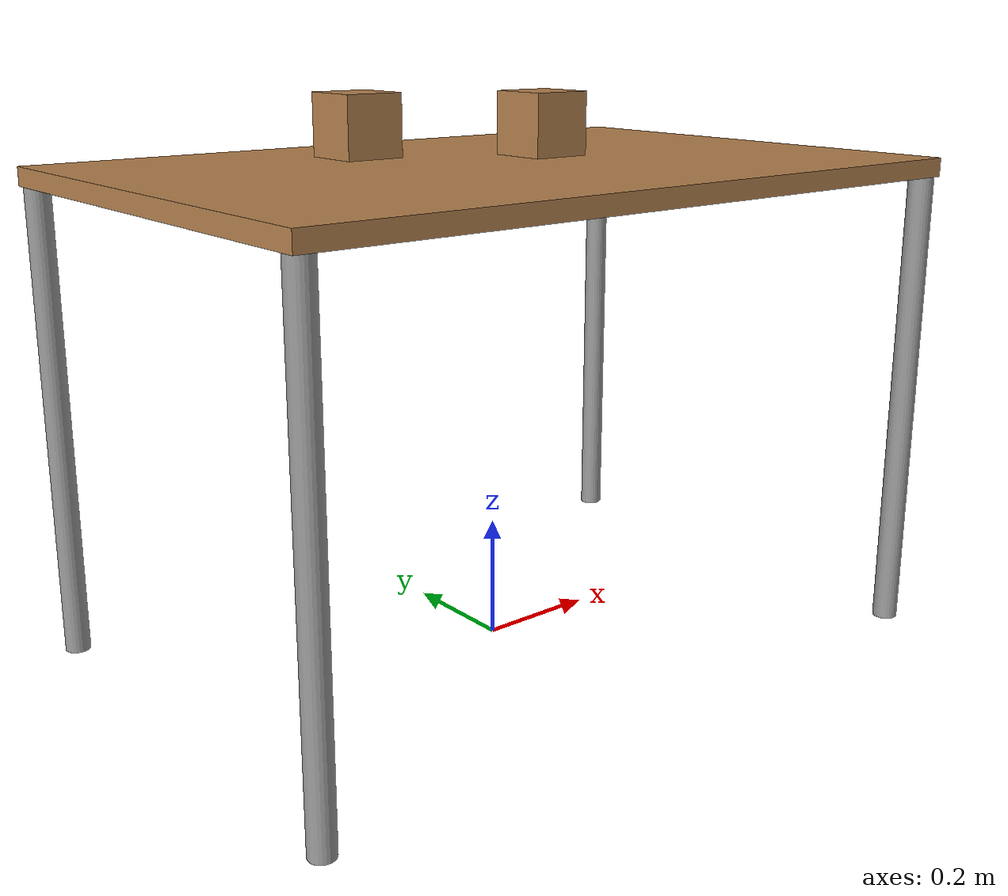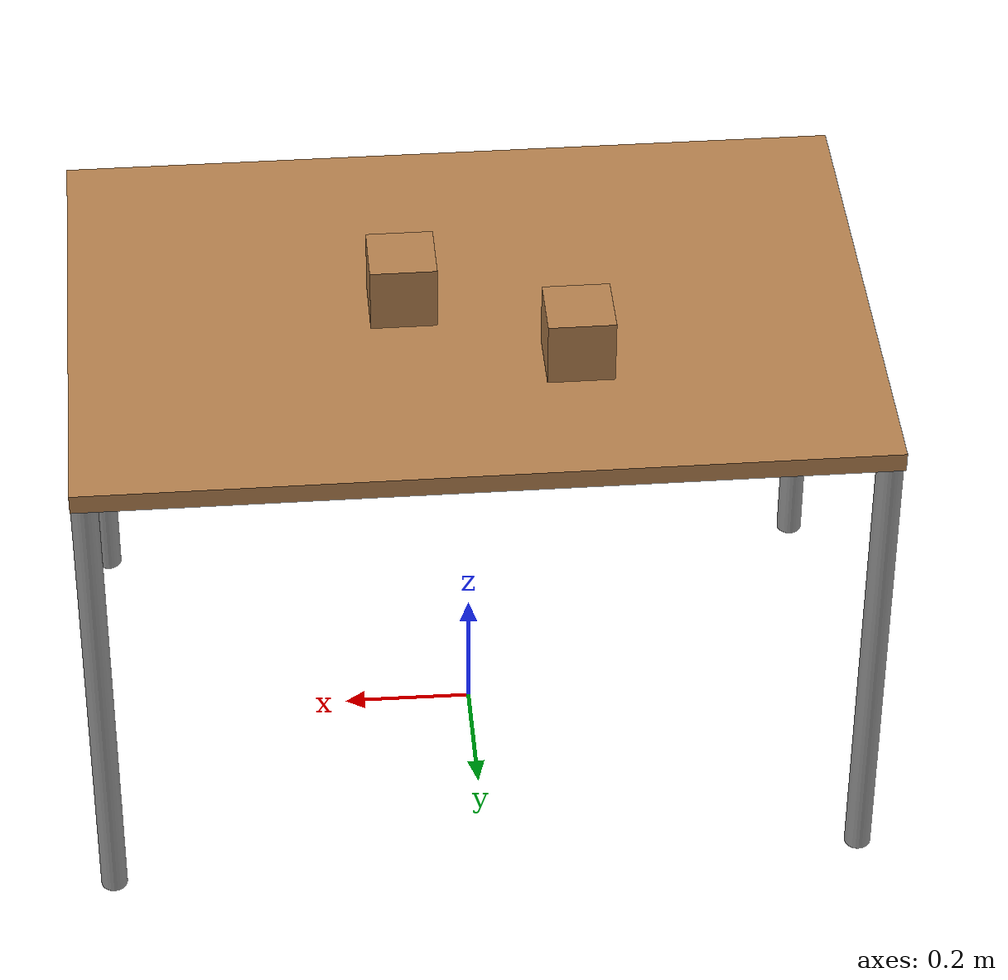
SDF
<?xml version="1.0" ?>
<sdf version="1.8">
    <world name="gz_world">
        <physics name="1ms" type="dart">
            <max_step_size>0.001</max_step_size>
            <real_time_factor>1.0</real_time_factor>
        </physics>
        <plugin
            filename="gz-sim-physics-system"
            name="gz::sim::systems::Physics">
        </plugin>
        <plugin
            filename="gz-sim-user-commands-system"
            name="gz::sim::systems::UserCommands">
        </plugin>
        <plugin
            filename="gz-sim-scene-broadcaster-system"
            name="gz::sim::systems::SceneBroadcaster">
        </plugin>
        <light type="directional" name="sun">
                <cast_shadows>true</cast_shadows>
                <pose>0 0 10 0 0 0</pose>
                <diffuse>0.8 0.8 0.8 1</diffuse>
                <specular>0.2 0.2 0.2 1</specular>
                <attenuation>
                    <range>1000</range>
                    <constant>0.9</constant>
                    <linear>0.01</linear>
                    <quadratic>0.001</quadratic>
                </attenuation>
                <direction>-0.5 0.1 -0.9</direction>
        </light>
        <include>
            <uri>
                model://Table
            </uri>
        </include>
        <include>
            <uri>
                model://wood_cube_1
            </uri>
            <pose>-0.15 0.15 0.85 0 0 0</pose>
        </include>
        <include>
            <uri>
                model://wood_cube_2
            </uri>
            <pose>0.1 0 0.85 0 0 0</pose>
        </include>
    </world>
</sdf>

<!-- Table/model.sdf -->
<sdf version="1.5">
  <model name="Table">
    <static>true</static>
    <link name="link">
      <collision name="surface">
        <pose>0 0 0.78 0 0 0</pose>
        <geometry>
          <box>
            <size>1.2 0.8 0.03</size>
          </box>
        </geometry>
        <surface>
          <friction>
            <ode>
              <mu>0.6</mu>
              <mu2>0.6</mu2>
            </ode>
          </friction>
        </surface>
      </collision>
      <visual name="visual1">
        <pose>0 0 0.78 0 0 0</pose>
        <geometry>
          <box>
            <size>1.2 0.8 0.03</size>
          </box>
        </geometry>
        <material>
          <diffuse>1.0 1.0 1.0</diffuse>
          <script>
            <uri>file://media/materials/scripts/gazebo.material</uri>
            <name>Gazebo/Wood</name>
          </script>
          <!-- PBR for Ignition, material scripts for gazebo classic-->
          <pbr>
            <metal>
              <albedo_map>model://Table/Table_Diffuse.jpg</albedo_map>
            </metal>
          </pbr>
        </material>
      </visual>
      <collision name="front_left_leg">
        <pose>0.58 0.38 0.39 0 0 0</pose>
        <geometry>
          <cylinder>
            <radius>0.02</radius>
            <length>0.78</length>
          </cylinder>
        </geometry>
      </collision>
      <visual name="front_left_leg">
        <pose>0.58 0.38 0.39 0 0 0</pose>
        <geometry>
          <cylinder>
            <radius>0.02</radius>
            <length>0.78</length>
          </cylinder>
        </geometry>
        <material>
          <diffuse>0.5 0.5 0.5</diffuse>
          <script>
            <uri>file://media/materials/scripts/gazebo.material</uri>
            <name>Gazebo/Grey</name>
          </script>
        </material>
      </visual>
      <collision name="front_right_leg">
        <pose>0.58 -0.38 0.39 0 0 0</pose>
        <geometry>
          <cylinder>
            <radius>0.02</radius>
            <length>0.78</length>
          </cylinder>
        </geometry>
      </collision>
      <visual name="front_right_leg">
        <pose>0.58 -0.38 0.39 0 0 0</pose>
        <geometry>
          <cylinder>
            <radius>0.02</radius>
            <length>0.78</length>
          </cylinder>
        </geometry>
        <material>
          <diffuse>0.5 0.5 0.5</diffuse>
          <script>
            <uri>file://media/materials/scripts/gazebo.material</uri>
            <name>Gazebo/Grey</name>
          </script>
        </material>
      </visual>
      <collision name="back_right_leg">
        <pose>-0.58 -0.38 0.39 0 0 0</pose>
        <geometry>
          <cylinder>
            <radius>0.02</radius>
            <length>0.78</length>
          </cylinder>
        </geometry>
      </collision>
      <visual name="back_right_leg">
        <pose>-0.58 -0.38 0.39 0 0 0</pose>
        <geometry>
          <cylinder>
            <radius>0.02</radius>
            <length>0.78</length>
          </cylinder>
        </geometry>
        <material>
          <diffuse>0.5 0.5 0.5</diffuse>
          <script>
            <uri>file://media/materials/scripts/gazebo.material</uri>
            <name>Gazebo/Grey</name>
          </script>
        </material>
      </visual>
      <collision name="back_left_leg">
        <pose>-0.58 0.38 0.39 0 0 0</pose>
        <geometry>
          <cylinder>
            <radius>0.02</radius>
            <length>0.78</length>
          </cylinder>
        </geometry>
      </collision>
      <visual name="back_left_leg">
        <pose>-0.58 0.38 0.39 0 0 0</pose>
        <geometry>
          <cylinder>
            <radius>0.02</radius>
            <length>0.78</length>
          </cylinder>
        </geometry>
        <material>
          <diffuse>0.5 0.5 0.5</diffuse>
          <script>
            <uri>file://media/materials/scripts/gazebo.material</uri>
            <name>Gazebo/Grey</name>
          </script>
        </material>
      </visual>
    </link>
  </model>
</sdf>

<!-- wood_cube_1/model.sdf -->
<sdf version="1.5">
  <model name="wood_cube_1">
    <link name="link">
      <pose>0 0 0 0 0 0</pose>
      <inertial>
        <mass>0.0565</mass>
        <inertia>
          <ixx>2.3541666666666672e-05</ixx>
          <ixy>0</ixy>
          <ixz>0</ixz>
          <iyy>2.3541666666666672e-05</iyy>
          <iyz>0</iyz>
          <izz>2.3541666666666672e-05</izz>
        </inertia>
      </inertial>

      <collision name="collision">
        <geometry>
          <box>
            <size>0.1 0.1 0.1</size>
          </box>
        </geometry>
        <surface>
          <contact>
            <!-- Red Pine coefficients for longitudinal axis of the wood
                 according to:
                 http://www.fpl.fs.fed.us/documnts/fplgtr/fplgtr113/ch04.pdf -->
            <poissons_ratio>0.347</poissons_ratio>
            <elastic_modulus>8.8e+09</elastic_modulus>
            <ode>
              <kp>100000</kp>
              <kd>1</kd>
              <max_vel>1.0</max_vel>
              <min_depth>0.001</min_depth>
            </ode>
          </contact>
          <friction>
            <torsional>
              <coefficient>1.0</coefficient>
              <use_patch_radius>0</use_patch_radius>
              <surface_radius>0.05</surface_radius>
            </torsional>
          </friction>
        </surface>
      </collision>

      <visual name="visual">
        <geometry>
          <box>
            <size>0.1 0.1 0.1</size>
          </box>
        </geometry>
        <material>
          <script>
            <uri>file://media/materials/scripts/gazebo.material</uri>
            <name>Gazebo/Wood</name>
          </script>
        </material>
      </visual>

    </link>
  </model>
</sdf>

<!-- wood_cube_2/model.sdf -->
<sdf version="1.5">
  <model name="wood_cube_2">
    <link name="link">
      <pose>0 0 0 0 0 0</pose>
      <inertial>
        <mass>0.0565</mass>
        <inertia>
          <ixx>2.3541666666666672e-05</ixx>
          <ixy>0</ixy>
          <ixz>0</ixz>
          <iyy>2.3541666666666672e-05</iyy>
          <iyz>0</iyz>
          <izz>2.3541666666666672e-05</izz>
        </inertia>
      </inertial>

      <collision name="collision">
        <geometry>
          <box>
            <size>0.1 0.1 0.1</size>
          </box>
        </geometry>
        <surface>
          <contact>
            <!-- Red Pine coefficients for longitudinal axis of the wood
                 according to:
                 http://www.fpl.fs.fed.us/documnts/fplgtr/fplgtr113/ch04.pdf -->
            <poissons_ratio>0.347</poissons_ratio>
            <elastic_modulus>8.8e+09</elastic_modulus>
            <ode>
              <kp>100000</kp>
              <kd>1</kd>
              <max_vel>1.0</max_vel>
              <min_depth>0.001</min_depth>
            </ode>
          </contact>
          <friction>
            <torsional>
              <coefficient>1.0</coefficient>
              <use_patch_radius>0</use_patch_radius>
              <surface_radius>0.05</surface_radius>
            </torsional>
          </friction>
        </surface>
      </collision>

      <visual name="visual">
        <geometry>
          <box>
            <size>0.1 0.1 0.1</size>
          </box>
        </geometry>
        <material>
          <script>
            <uri>file://media/materials/scripts/gazebo.material</uri>
            <name>Gazebo/Wood</name>
          </script>
        </material>
      </visual>

    </link>
  </model>
</sdf>
